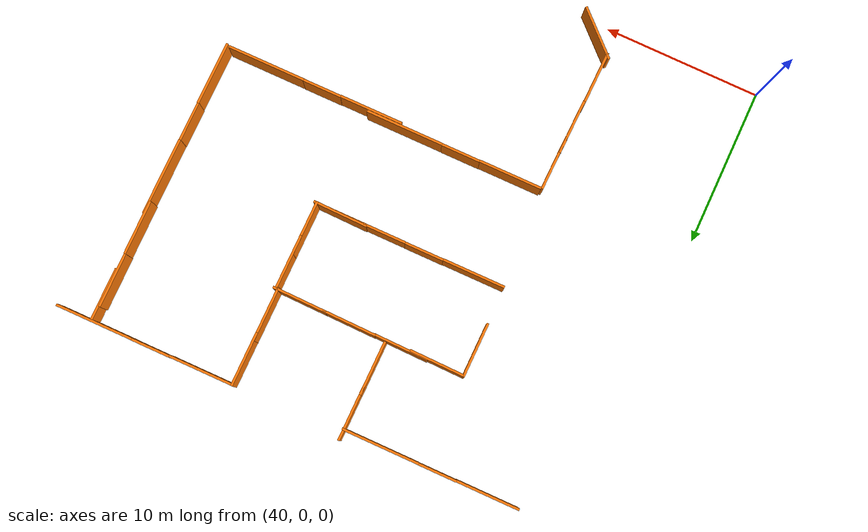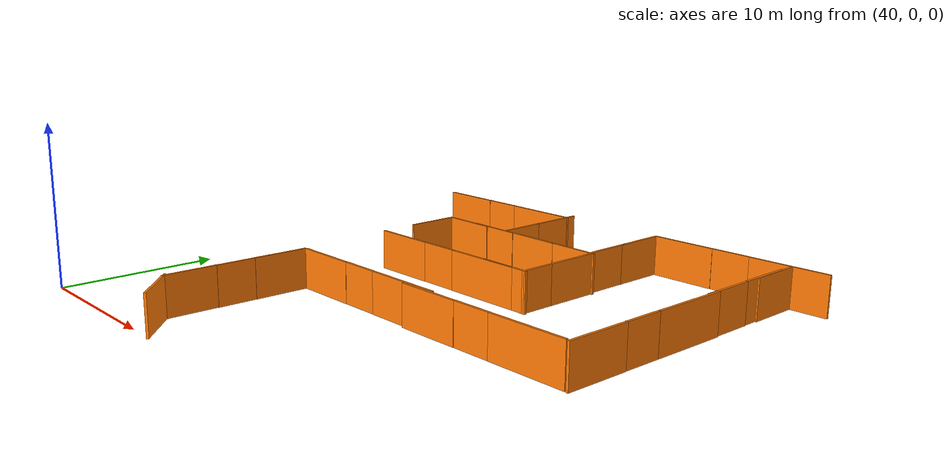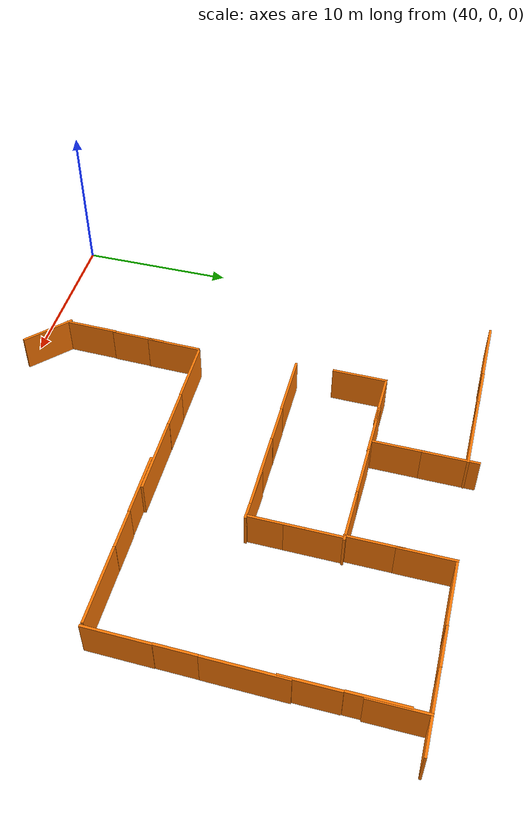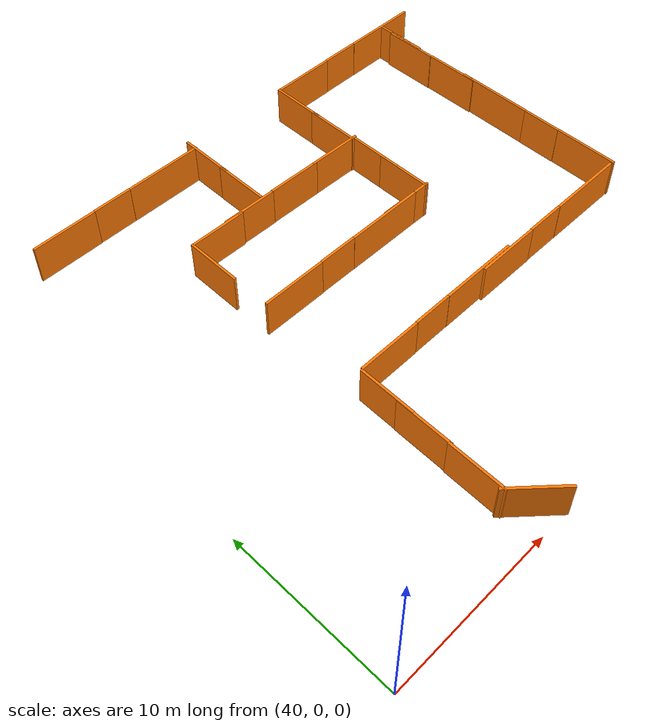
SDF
<sdf version="1.7">
 <world name="cimen_zemin_dunyasi">
  <model name="barrier2_1_clone_clone_clone">
   <pose>48.8907 1.64149 0 0 -0 2.38948</pose>
   <link name="Wall_3">
    <collision name="Wall_3_Collision">
     <geometry><box><size>3.5 0.15 2.5</size></box></geometry>
     <pose>0 0 1.25 0 -0 0</pose>
    </collision>
    <visual name="Wall_3_Visual">
     <pose>0 0 1.25 0 -0 0</pose>
     <geometry><box><size>3.5 0.15 2.5</size></box></geometry>
     <material>
      <script><uri>file://media/materials/scripts/gazebo.material</uri><name>Gazebo/Grey</name></script>
      <ambient>0.996078 0.47451 0.0196078 1</ambient>
     </material>
     <meta><layer>0</layer></meta>
    </visual>
    <pose>-1.55327 -0.720218 0 0 -0 0</pose>
   </link>
   <static>1</static>
  </model>
  <model name="barrier2_1_clone_clone_clone_clone_clone_clone_clone">
   <pose>61.7236 24.0173 0 0 0 -0.015947</pose>
   <link name="Wall_3">
    <collision name="Wall_3_Collision">
     <geometry><box><size>3.5 0.15 2.5</size></box></geometry>
     <pose>0 0 1.25 0 -0 0</pose>
    </collision>
    <visual name="Wall_3_Visual">
     <pose>0 0 1.25 0 -0 0</pose>
     <geometry><box><size>3.5 0.15 2.5</size></box></geometry>
     <material>
      <script><uri>file://media/materials/scripts/gazebo.material</uri><name>Gazebo/Grey</name></script>
      <ambient>0.996078 0.47451 0.0196078 1</ambient>
     </material>
     <meta><layer>0</layer></meta>
    </visual>
    <pose>-1.55327 -0.720218 0 0 -0 0</pose>
   </link>
   <static>1</static>
  </model>
  <model name="barrier2_1_clone_clone_clone_clone_clone_clone_clone_clone">
   <pose>58.4665 24.0631 0 0 0 -0.015947</pose>
   <link name="Wall_3">
    <collision name="Wall_3_Collision">
     <geometry><box><size>3.5 0.15 2.5</size></box></geometry>
     <pose>0 0 1.25 0 -0 0</pose>
    </collision>
    <visual name="Wall_3_Visual">
     <pose>0 0 1.25 0 -0 0</pose>
     <geometry><box><size>3.5 0.15 2.5</size></box></geometry>
     <material>
      <script><uri>file://media/materials/scripts/gazebo.material</uri><name>Gazebo/Grey</name></script>
      <ambient>0.996078 0.47451 0.0196078 1</ambient>
     </material>
     <meta><layer>0</layer></meta>
    </visual>
    <pose>-1.55327 -0.720218 0 0 -0 0</pose>
   </link>
   <static>1</static>
  </model>
  <model name="barrier2_1_clone_clone_clone_clone_clone_clone_clone_clone_clone">
   <pose>55.0363 24.0914 0 0 0 -0.015947</pose>
   <link name="Wall_3">
    <collision name="Wall_3_Collision">
     <geometry><box><size>3.5 0.15 2.5</size></box></geometry>
     <pose>0 0 1.25 0 -0 0</pose>
    </collision>
    <visual name="Wall_3_Visual">
     <pose>0 0 1.25 0 -0 0</pose>
     <geometry><box><size>3.5 0.15 2.5</size></box></geometry>
     <material>
      <script><uri>file://media/materials/scripts/gazebo.material</uri><name>Gazebo/Grey</name></script>
      <ambient>0.996078 0.47451 0.0196078 1</ambient>
     </material>
     <meta><layer>0</layer></meta>
    </visual>
    <pose>-1.55327 -0.720218 0 0 -0 0</pose>
   </link>
   <static>1</static>
  </model>
  <model name="barrier2_1_clone_clone_clone_clone_clone_clone_clone_clone_clone_clone">
   <pose>52.7158 24.068 0 0 0 -0.015947</pose>
   <link name="Wall_3">
    <collision name="Wall_3_Collision">
     <geometry><box><size>3.5 0.15 2.5</size></box></geometry>
     <pose>0 0 1.25 0 -0 0</pose>
    </collision>
    <visual name="Wall_3_Visual">
     <pose>0 0 1.25 0 -0 0</pose>
     <geometry><box><size>3.5 0.15 2.5</size></box></geometry>
     <material>
      <script><uri>file://media/materials/scripts/gazebo.material</uri><name>Gazebo/Grey</name></script>
      <ambient>0.996078 0.47451 0.0196078 1</ambient>
     </material>
     <meta><layer>0</layer></meta>
    </visual>
    <pose>-1.55327 -0.720218 0 0 -0 0</pose>
   </link>
   <static>1</static>
  </model>
  <model name="barrier2_1_clone_clone_clone_clone_clone_clone_clone_clone_clone_clone_clone">
   <pose>48.646 23.2844 0 0 -0 1.56031</pose>
   <link name="Wall_3">
    <collision name="Wall_3_Collision">
     <geometry><box><size>3.5 0.15 2.5</size></box></geometry>
     <pose>0 0 1.25 0 -0 0</pose>
    </collision>
    <visual name="Wall_3_Visual">
     <pose>0 0 1.25 0 -0 0</pose>
     <geometry><box><size>3.5 0.15 2.5</size></box></geometry>
     <material>
      <script><uri>file://media/materials/scripts/gazebo.material</uri><name>Gazebo/Grey</name></script>
      <ambient>0.996078 0.47451 0.0196078 1</ambient>
     </material>
     <meta><layer>0</layer></meta>
    </visual>
    <pose>-1.55327 -0.720218 0 0 -0 0</pose>
   </link>
   <static>1</static>
  </model>
  <model name="barier3_clone_clone_clone_clone_0_clone_clone_clone_clone_1_clone_clone_clone_clone_0_clone_clone_0_clone">
   <link name="Wall_5">
    <pose>-1.25417 -2.31114 0 0 -0 0</pose>
    <inertial>
     <inertia><ixx>0</ixx><ixy>0</ixy><ixz>0</ixz><iyy>0</iyy><iyz>0</iyz><izz>0</izz></inertia>
     <mass>0</mass>
    </inertial>
    <visual name="Wall_5_Visual">
     <pose>0 0 1.25 0 -0 0</pose>
     <geometry><box><size>4.04839 0.15 2.5</size></box></geometry>
     <material>
      <script><uri>file://media/materials/scripts/gazebo.material</uri><name>Gazebo/Grey</name></script>
      <ambient>0.996078 0.47451 0.0196078 1</ambient>
      <shader type="pixel"/>
     </material>
     <meta><layer>0</layer></meta>
    </visual>
    <collision name="Wall_5_Collision">
     <pose>0 0 1.25 0 -0 0</pose>
     <geometry><box><size>4.04839 0.15 2.5</size></box></geometry>
     <surface>
      <friction>
       <ode><mu>1</mu><mu2>1</mu2><fdir1>0 0 0</fdir1><slip1>0</slip1><slip2>0</slip2></ode>
       <torsional>
        <coefficient>1</coefficient>
        <patch_radius>0</patch_radius>
        <surface_radius>0</surface_radius>
        <use_patch_radius>1</use_patch_radius>
        <ode><slip>0</slip></ode>
       </torsional>
      </friction>
      <bounce><restitution_coefficient>0</restitution_coefficient><threshold>1e+06</threshold></bounce>
      <contact>
       <collide_without_contact>0</collide_without_contact>
       <collide_without_contact_bitmask>1</collide_without_contact_bitmask>
       <collide_bitmask>1</collide_bitmask>
       <ode>
        <soft_cfm>0</soft_cfm>
        <soft_erp>0.2</soft_erp>
        <kp>1e+13</kp>
        <kd>1</kd>
        <max_vel>0.01</max_vel>
        <min_depth>0</min_depth>
       </ode>
       <bullet>
        <split_impulse>1</split_impulse>
        <split_impulse_penetration_threshold>-0.01</split_impulse_penetration_threshold>
        <soft_cfm>0</soft_cfm>
        <soft_erp>0.2</soft_erp>
        <kp>1e+13</kp>
        <kd>1</kd>
       </bullet>
      </contact>
     </surface>
    </collision>
   </link>
   <link name="Wall_7">
    <pose>2 -2.29057 0 0 -0 0</pose>
    <visual name="Wall_7_Visual">
     <pose>0 0 1.25 0 -0 0</pose>
     <geometry><box><size>2.5 0.15 2.5</size></box></geometry>
     <material>
      <script><uri>file://media/materials/scripts/gazebo.material</uri><name>Gazebo/Grey</name></script>
      <ambient>0.996078 0.47451 0.0196078 1</ambient>
      <shader type="pixel"/>
     </material>
     <meta><layer>0</layer></meta>
    </visual>
    <collision name="Wall_7_Collision">
     <pose>0 0 1.25 0 -0 0</pose>
     <geometry><box><size>2.5 0.15 2.5</size></box></geometry>
     <surface>
      <friction>
       <ode><mu>1</mu><mu2>1</mu2><fdir1>0 0 0</fdir1><slip1>0</slip1><slip2>0</slip2></ode>
       <torsional>
        <coefficient>1</coefficient>
        <patch_radius>0</patch_radius>
        <surface_radius>0</surface_radius>
        <use_patch_radius>1</use_patch_radius>
        <ode><slip>0</slip></ode>
       </torsional>
      </friction>
      <bounce><restitution_coefficient>0</restitution_coefficient><threshold>1e+06</threshold></bounce>
      <contact>
       <collide_without_contact>0</collide_without_contact>
       <collide_without_contact_bitmask>1</collide_without_contact_bitmask>
       <collide_bitmask>1</collide_bitmask>
       <ode>
        <soft_cfm>0</soft_cfm>
        <soft_erp>0.2</soft_erp>
        <kp>1e+13</kp>
        <kd>1</kd>
        <max_vel>0.01</max_vel>
        <min_depth>0</min_depth>
       </ode>
       <bullet>
        <split_impulse>1</split_impulse>
        <split_impulse_penetration_threshold>-0.01</split_impulse_penetration_threshold>
        <soft_cfm>0</soft_cfm>
        <soft_erp>0.2</soft_erp>
        <kp>1e+13</kp>
        <kd>1</kd>
       </bullet>
      </contact>
     </surface>
    </collision>
   </link>
   <link name="Wall_9">
    <pose>5.71906 -2.30051 0 0 -0 0</pose>
    <inertial>
     <inertia><ixx>0</ixx><ixy>0</ixy><ixz>0</ixz><iyy>0</iyy><iyz>0</iyz><izz>0</izz></inertia>
     <mass>0</mass>
    </inertial>
    <visual name="Wall_9_Visual">
     <pose>0 0 1.25 0 -0 0</pose>
     <geometry><box><size>4.97607 0.15 2.5</size></box></geometry>
     <material>
      <script><uri>file://media/materials/scripts/gazebo.material</uri><name>Gazebo/Grey</name></script>
      <ambient>0.996078 0.47451 0.0196078 1</ambient>
      <shader type="pixel"/>
     </material>
     <meta><layer>0</layer></meta>
    </visual>
    <collision name="Wall_9_Collision">
     <pose>0 0 1.25 0 -0 0</pose>
     <geometry><box><size>4.97607 0.15 2.5</size></box></geometry>
     <surface>
      <friction>
       <ode><mu>1</mu><mu2>1</mu2><fdir1>0 0 0</fdir1><slip1>0</slip1><slip2>0</slip2></ode>
       <torsional>
        <coefficient>1</coefficient>
        <patch_radius>0</patch_radius>
        <surface_radius>0</surface_radius>
        <use_patch_radius>1</use_patch_radius>
        <ode><slip>0</slip></ode>
       </torsional>
      </friction>
      <bounce><restitution_coefficient>0</restitution_coefficient><threshold>1e+06</threshold></bounce>
      <contact>
       <collide_without_contact>0</collide_without_contact>
       <collide_without_contact_bitmask>1</collide_without_contact_bitmask>
       <collide_bitmask>1</collide_bitmask>
       <ode>
        <soft_cfm>0</soft_cfm>
        <soft_erp>0.2</soft_erp>
        <kp>1e+13</kp>
        <kd>1</kd>
        <max_vel>0.01</max_vel>
        <min_depth>0</min_depth>
       </ode>
       <bullet>
        <split_impulse>1</split_impulse>
        <split_impulse_penetration_threshold>-0.01</split_impulse_penetration_threshold>
        <soft_cfm>0</soft_cfm>
        <soft_erp>0.2</soft_erp>
        <kp>1e+13</kp>
        <kd>1</kd>
       </bullet>
      </contact>
     </surface>
    </collision>
   </link>
   <static>1</static>
   <pose>68.4276 14.3355 0 0 -0 1.553</pose>
  </model>
  <model name="barier3_clone_clone_clone_clone_0_clone_clone_clone_clone_1_clone_clone_clone_clone_0_clone_clone_0_clone_clone">
   <link name="Wall_5">
    <pose>-1.25417 -2.31114 0 0 -0 0</pose>
    <inertial>
     <inertia><ixx>0</ixx><ixy>0</ixy><ixz>0</ixz><iyy>0</iyy><iyz>0</iyz><izz>0</izz></inertia>
     <mass>0</mass>
    </inertial>
    <visual name="Wall_5_Visual">
     <pose>0 0 1.25 0 -0 0</pose>
     <geometry><box><size>4.04839 0.15 2.5</size></box></geometry>
     <material>
      <script><uri>file://media/materials/scripts/gazebo.material</uri><name>Gazebo/Grey</name></script>
      <ambient>0.996078 0.47451 0.0196078 1</ambient>
      <shader type="pixel"/>
     </material>
     <meta><layer>0</layer></meta>
    </visual>
    <collision name="Wall_5_Collision">
     <pose>0 0 1.25 0 -0 0</pose>
     <geometry><box><size>4.04839 0.15 2.5</size></box></geometry>
     <surface>
      <friction>
       <ode><mu>1</mu><mu2>1</mu2><fdir1>0 0 0</fdir1><slip1>0</slip1><slip2>0</slip2></ode>
       <torsional>
        <coefficient>1</coefficient>
        <patch_radius>0</patch_radius>
        <surface_radius>0</surface_radius>
        <use_patch_radius>1</use_patch_radius>
        <ode><slip>0</slip></ode>
       </torsional>
      </friction>
      <bounce><restitution_coefficient>0</restitution_coefficient><threshold>1e+06</threshold></bounce>
      <contact>
       <collide_without_contact>0</collide_without_contact>
       <collide_without_contact_bitmask>1</collide_without_contact_bitmask>
       <collide_bitmask>1</collide_bitmask>
       <ode>
        <soft_cfm>0</soft_cfm>
        <soft_erp>0.2</soft_erp>
        <kp>1e+13</kp>
        <kd>1</kd>
        <max_vel>0.01</max_vel>
        <min_depth>0</min_depth>
       </ode>
       <bullet>
        <split_impulse>1</split_impulse>
        <split_impulse_penetration_threshold>-0.01</split_impulse_penetration_threshold>
        <soft_cfm>0</soft_cfm>
        <soft_erp>0.2</soft_erp>
        <kp>1e+13</kp>
        <kd>1</kd>
       </bullet>
      </contact>
     </surface>
    </collision>
   </link>
   <link name="Wall_7">
    <pose>2 -2.29057 0 0 -0 0</pose>
    <visual name="Wall_7_Visual">
     <pose>0 0 1.25 0 -0 0</pose>
     <geometry><box><size>2.5 0.15 2.5</size></box></geometry>
     <material>
      <script><uri>file://media/materials/scripts/gazebo.material</uri><name>Gazebo/Grey</name></script>
      <ambient>0.996078 0.47451 0.0196078 1</ambient>
      <shader type="pixel"/>
     </material>
     <meta><layer>0</layer></meta>
    </visual>
    <collision name="Wall_7_Collision">
     <pose>0 0 1.25 0 -0 0</pose>
     <geometry><box><size>2.5 0.15 2.5</size></box></geometry>
     <surface>
      <friction>
       <ode><mu>1</mu><mu2>1</mu2><fdir1>0 0 0</fdir1><slip1>0</slip1><slip2>0</slip2></ode>
       <torsional>
        <coefficient>1</coefficient>
        <patch_radius>0</patch_radius>
        <surface_radius>0</surface_radius>
        <use_patch_radius>1</use_patch_radius>
        <ode><slip>0</slip></ode>
       </torsional>
      </friction>
      <bounce><restitution_coefficient>0</restitution_coefficient><threshold>1e+06</threshold></bounce>
      <contact>
       <collide_without_contact>0</collide_without_contact>
       <collide_without_contact_bitmask>1</collide_without_contact_bitmask>
       <collide_bitmask>1</collide_bitmask>
       <ode>
        <soft_cfm>0</soft_cfm>
        <soft_erp>0.2</soft_erp>
        <kp>1e+13</kp>
        <kd>1</kd>
        <max_vel>0.01</max_vel>
        <min_depth>0</min_depth>
       </ode>
       <bullet>
        <split_impulse>1</split_impulse>
        <split_impulse_penetration_threshold>-0.01</split_impulse_penetration_threshold>
        <soft_cfm>0</soft_cfm>
        <soft_erp>0.2</soft_erp>
        <kp>1e+13</kp>
        <kd>1</kd>
       </bullet>
      </contact>
     </surface>
    </collision>
   </link>
   <link name="Wall_9">
    <pose>5.71906 -2.30051 0 0 -0 0</pose>
    <inertial>
     <inertia><ixx>0</ixx><ixy>0</ixy><ixz>0</ixz><iyy>0</iyy><iyz>0</iyz><izz>0</izz></inertia>
     <mass>0</mass>
    </inertial>
    <visual name="Wall_9_Visual">
     <pose>0 0 1.25 0 -0 0</pose>
     <geometry><box><size>4.97607 0.15 2.5</size></box></geometry>
     <material>
      <script><uri>file://media/materials/scripts/gazebo.material</uri><name>Gazebo/Grey</name></script>
      <ambient>0.996078 0.47451 0.0196078 1</ambient>
      <shader type="pixel"/>
     </material>
     <meta><layer>0</layer></meta>
    </visual>
    <collision name="Wall_9_Collision">
     <pose>0 0 1.25 0 -0 0</pose>
     <geometry><box><size>4.97607 0.15 2.5</size></box></geometry>
     <surface>
      <friction>
       <ode><mu>1</mu><mu2>1</mu2><fdir1>0 0 0</fdir1><slip1>0</slip1><slip2>0</slip2></ode>
       <torsional>
        <coefficient>1</coefficient>
        <patch_radius>0</patch_radius>
        <surface_radius>0</surface_radius>
        <use_patch_radius>1</use_patch_radius>
        <ode><slip>0</slip></ode>
       </torsional>
      </friction>
      <bounce><restitution_coefficient>0</restitution_coefficient><threshold>1e+06</threshold></bounce>
      <contact>
       <collide_without_contact>0</collide_without_contact>
       <collide_without_contact_bitmask>1</collide_without_contact_bitmask>
       <collide_bitmask>1</collide_bitmask>
       <ode>
        <soft_cfm>0</soft_cfm>
        <soft_erp>0.2</soft_erp>
        <kp>1e+13</kp>
        <kd>1</kd>
        <max_vel>0.01</max_vel>
        <min_depth>0</min_depth>
       </ode>
       <bullet>
        <split_impulse>1</split_impulse>
        <split_impulse_penetration_threshold>-0.01</split_impulse_penetration_threshold>
        <soft_cfm>0</soft_cfm>
        <soft_erp>0.2</soft_erp>
        <kp>1e+13</kp>
        <kd>1</kd>
       </bullet>
      </contact>
     </surface>
    </collision>
   </link>
   <static>1</static>
   <pose>62.303 13.4148 0 0 -0 0.001487</pose>
  </model>
  <model name="barrier2_1_clone_clone_clone_clone_clone_clone_clone_clone_clone_clone_clone_clone_0_clone_clone_0">
   <pose>70.1113 24.9594 0 0 -0 1.56031</pose>
   <link name="Wall_3">
    <collision name="Wall_3_Collision">
     <geometry><box><size>3.5 0.15 2.5</size></box></geometry>
     <pose>0 0 1.25 0 -0 0</pose>
    </collision>
    <visual name="Wall_3_Visual">
     <pose>0 0 1.25 0 -0 0</pose>
     <geometry><box><size>3.5 0.15 2.5</size></box></geometry>
     <material>
      <script><uri>file://media/materials/scripts/gazebo.material</uri><name>Gazebo/Grey</name></script>
      <ambient>0.996078 0.47451 0.0196078 1</ambient>
     </material>
     <meta><layer>0</layer></meta>
    </visual>
    <pose>-1.55327 -0.720218 0 0 -0 0</pose>
   </link>
   <static>1</static>
  </model>
  <model name="barrier2_1_clone_clone_clone_clone_clone_clone_clone_clone_clone_clone_clone_clone_0_clone_clone_0_clone">
   <pose>70.1187 28.4669 0 0 -0 1.56031</pose>
   <link name="Wall_3">
    <collision name="Wall_3_Collision">
     <geometry><box><size>3.5 0.15 2.5</size></box></geometry>
     <pose>0 0 1.25 0 -0 0</pose>
    </collision>
    <visual name="Wall_3_Visual">
     <pose>0 0 1.25 0 -0 0</pose>
     <geometry><box><size>3.5 0.15 2.5</size></box></geometry>
     <material>
      <script><uri>file://media/materials/scripts/gazebo.material</uri><name>Gazebo/Grey</name></script>
      <ambient>0.996078 0.47451 0.0196078 1</ambient>
     </material>
     <meta><layer>0</layer></meta>
    </visual>
    <pose>-1.55327 -0.720218 0 0 -0 0</pose>
   </link>
   <static>1</static>
  </model>
  <model name="barier3_clone_clone_clone_clone_0_clone_clone_clone_clone_1_clone_clone_clone_clone_0_clone_clone_0_clone_clone_clone">
   <link name="Wall_5">
    <pose>-1.25417 -2.31114 0 0 -0 0</pose>
    <inertial>
     <inertia><ixx>0</ixx><ixy>0</ixy><ixz>0</ixz><iyy>0</iyy><iyz>0</iyz><izz>0</izz></inertia>
     <mass>0</mass>
    </inertial>
    <visual name="Wall_5_Visual">
     <pose>0 0 1.25 0 -0 0</pose>
     <geometry><box><size>4.04839 0.15 2.5</size></box></geometry>
     <material>
      <script><uri>file://media/materials/scripts/gazebo.material</uri><name>Gazebo/Grey</name></script>
      <ambient>0.996078 0.47451 0.0196078 1</ambient>
      <shader type="pixel"/>
     </material>
     <meta><layer>0</layer></meta>
    </visual>
    <collision name="Wall_5_Collision">
     <pose>0 0 1.25 0 -0 0</pose>
     <geometry><box><size>4.04839 0.15 2.5</size></box></geometry>
     <surface>
      <friction>
       <ode><mu>1</mu><mu2>1</mu2><fdir1>0 0 0</fdir1><slip1>0</slip1><slip2>0</slip2></ode>
       <torsional>
        <coefficient>1</coefficient>
        <patch_radius>0</patch_radius>
        <surface_radius>0</surface_radius>
        <use_patch_radius>1</use_patch_radius>
        <ode><slip>0</slip></ode>
       </torsional>
      </friction>
      <bounce><restitution_coefficient>0</restitution_coefficient><threshold>1e+06</threshold></bounce>
      <contact>
       <collide_without_contact>0</collide_without_contact>
       <collide_without_contact_bitmask>1</collide_without_contact_bitmask>
       <collide_bitmask>1</collide_bitmask>
       <ode>
        <soft_cfm>0</soft_cfm>
        <soft_erp>0.2</soft_erp>
        <kp>1e+13</kp>
        <kd>1</kd>
        <max_vel>0.01</max_vel>
        <min_depth>0</min_depth>
       </ode>
       <bullet>
        <split_impulse>1</split_impulse>
        <split_impulse_penetration_threshold>-0.01</split_impulse_penetration_threshold>
        <soft_cfm>0</soft_cfm>
        <soft_erp>0.2</soft_erp>
        <kp>1e+13</kp>
        <kd>1</kd>
       </bullet>
      </contact>
     </surface>
    </collision>
   </link>
   <link name="Wall_7">
    <pose>2 -2.29057 0 0 -0 0</pose>
    <visual name="Wall_7_Visual">
     <pose>0 0 1.25 0 -0 0</pose>
     <geometry><box><size>2.5 0.15 2.5</size></box></geometry>
     <material>
      <script><uri>file://media/materials/scripts/gazebo.material</uri><name>Gazebo/Grey</name></script>
      <ambient>0.996078 0.47451 0.0196078 1</ambient>
      <shader type="pixel"/>
     </material>
     <meta><layer>0</layer></meta>
    </visual>
    <collision name="Wall_7_Collision">
     <pose>0 0 1.25 0 -0 0</pose>
     <geometry><box><size>2.5 0.15 2.5</size></box></geometry>
     <surface>
      <friction>
       <ode><mu>1</mu><mu2>1</mu2><fdir1>0 0 0</fdir1><slip1>0</slip1><slip2>0</slip2></ode>
       <torsional>
        <coefficient>1</coefficient>
        <patch_radius>0</patch_radius>
        <surface_radius>0</surface_radius>
        <use_patch_radius>1</use_patch_radius>
        <ode><slip>0</slip></ode>
       </torsional>
      </friction>
      <bounce><restitution_coefficient>0</restitution_coefficient><threshold>1e+06</threshold></bounce>
      <contact>
       <collide_without_contact>0</collide_without_contact>
       <collide_without_contact_bitmask>1</collide_without_contact_bitmask>
       <collide_bitmask>1</collide_bitmask>
       <ode>
        <soft_cfm>0</soft_cfm>
        <soft_erp>0.2</soft_erp>
        <kp>1e+13</kp>
        <kd>1</kd>
        <max_vel>0.01</max_vel>
        <min_depth>0</min_depth>
       </ode>
       <bullet>
        <split_impulse>1</split_impulse>
        <split_impulse_penetration_threshold>-0.01</split_impulse_penetration_threshold>
        <soft_cfm>0</soft_cfm>
        <soft_erp>0.2</soft_erp>
        <kp>1e+13</kp>
        <kd>1</kd>
       </bullet>
      </contact>
     </surface>
    </collision>
   </link>
   <link name="Wall_9">
    <pose>5.71906 -2.30051 0 0 -0 0</pose>
    <inertial>
     <inertia><ixx>0</ixx><ixy>0</ixy><ixz>0</ixz><iyy>0</iyy><iyz>0</iyz><izz>0</izz></inertia>
     <mass>0</mass>
    </inertial>
    <visual name="Wall_9_Visual">
     <pose>0 0 1.25 0 -0 0</pose>
     <geometry><box><size>4.97607 0.15 2.5</size></box></geometry>
     <material>
      <script><uri>file://media/materials/scripts/gazebo.material</uri><name>Gazebo/Grey</name></script>
      <ambient>0.996078 0.47451 0.0196078 1</ambient>
      <shader type="pixel"/>
     </material>
     <meta><layer>0</layer></meta>
    </visual>
    <collision name="Wall_9_Collision">
     <pose>0 0 1.25 0 -0 0</pose>
     <geometry><box><size>4.97607 0.15 2.5</size></box></geometry>
     <surface>
      <friction>
       <ode><mu>1</mu><mu2>1</mu2><fdir1>0 0 0</fdir1><slip1>0</slip1><slip2>0</slip2></ode>
       <torsional>
        <coefficient>1</coefficient>
        <patch_radius>0</patch_radius>
        <surface_radius>0</surface_radius>
        <use_patch_radius>1</use_patch_radius>
        <ode><slip>0</slip></ode>
       </torsional>
      </friction>
      <bounce><restitution_coefficient>0</restitution_coefficient><threshold>1e+06</threshold></bounce>
      <contact>
       <collide_without_contact>0</collide_without_contact>
       <collide_without_contact_bitmask>1</collide_without_contact_bitmask>
       <collide_bitmask>1</collide_bitmask>
       <ode>
        <soft_cfm>0</soft_cfm>
        <soft_erp>0.2</soft_erp>
        <kp>1e+13</kp>
        <kd>1</kd>
        <max_vel>0.01</max_vel>
        <min_depth>0</min_depth>
       </ode>
       <bullet>
        <split_impulse>1</split_impulse>
        <split_impulse_penetration_threshold>-0.01</split_impulse_penetration_threshold>
        <soft_cfm>0</soft_cfm>
        <soft_erp>0.2</soft_erp>
        <kp>1e+13</kp>
        <kd>1</kd>
       </bullet>
      </contact>
     </surface>
    </collision>
   </link>
   <static>1</static>
   <pose>53.0359 13.5511 0 0 -0 0.001487</pose>
  </model>
  <model name="barier3_clone_clone_clone_clone_0_clone_clone_clone_clone_1_clone_clone_clone_clone_0_clone_clone_0_clone_clone_clone_clone">
   <link name="Wall_5">
    <pose>-1.25417 -2.31114 0 0 -0 0</pose>
    <inertial>
     <inertia><ixx>0</ixx><ixy>0</ixy><ixz>0</ixz><iyy>0</iyy><iyz>0</iyz><izz>0</izz></inertia>
     <mass>0</mass>
    </inertial>
    <visual name="Wall_5_Visual">
     <pose>0 0 1.25 0 -0 0</pose>
     <geometry><box><size>4.04839 0.15 2.5</size></box></geometry>
     <material>
      <script><uri>file://media/materials/scripts/gazebo.material</uri><name>Gazebo/Grey</name></script>
      <ambient>0.996078 0.47451 0.0196078 1</ambient>
      <shader type="pixel"/>
     </material>
     <meta><layer>0</layer></meta>
    </visual>
    <collision name="Wall_5_Collision">
     <pose>0 0 1.25 0 -0 0</pose>
     <geometry><box><size>4.04839 0.15 2.5</size></box></geometry>
     <surface>
      <friction>
       <ode><mu>1</mu><mu2>1</mu2><fdir1>0 0 0</fdir1><slip1>0</slip1><slip2>0</slip2></ode>
       <torsional>
        <coefficient>1</coefficient>
        <patch_radius>0</patch_radius>
        <surface_radius>0</surface_radius>
        <use_patch_radius>1</use_patch_radius>
        <ode><slip>0</slip></ode>
       </torsional>
      </friction>
      <bounce><restitution_coefficient>0</restitution_coefficient><threshold>1e+06</threshold></bounce>
      <contact>
       <collide_without_contact>0</collide_without_contact>
       <collide_without_contact_bitmask>1</collide_without_contact_bitmask>
       <collide_bitmask>1</collide_bitmask>
       <ode>
        <soft_cfm>0</soft_cfm>
        <soft_erp>0.2</soft_erp>
        <kp>1e+13</kp>
        <kd>1</kd>
        <max_vel>0.01</max_vel>
        <min_depth>0</min_depth>
       </ode>
       <bullet>
        <split_impulse>1</split_impulse>
        <split_impulse_penetration_threshold>-0.01</split_impulse_penetration_threshold>
        <soft_cfm>0</soft_cfm>
        <soft_erp>0.2</soft_erp>
        <kp>1e+13</kp>
        <kd>1</kd>
       </bullet>
      </contact>
     </surface>
    </collision>
   </link>
   <link name="Wall_7">
    <pose>2 -2.29057 0 0 -0 0</pose>
    <visual name="Wall_7_Visual">
     <pose>0 0 1.25 0 -0 0</pose>
     <geometry><box><size>2.5 0.15 2.5</size></box></geometry>
     <material>
      <script><uri>file://media/materials/scripts/gazebo.material</uri><name>Gazebo/Grey</name></script>
      <ambient>0.996078 0.47451 0.0196078 1</ambient>
      <shader type="pixel"/>
     </material>
     <meta><layer>0</layer></meta>
    </visual>
    <collision name="Wall_7_Collision">
     <pose>0 0 1.25 0 -0 0</pose>
     <geometry><box><size>2.5 0.15 2.5</size></box></geometry>
     <surface>
      <friction>
       <ode><mu>1</mu><mu2>1</mu2><fdir1>0 0 0</fdir1><slip1>0</slip1><slip2>0</slip2></ode>
       <torsional>
        <coefficient>1</coefficient>
        <patch_radius>0</patch_radius>
        <surface_radius>0</surface_radius>
        <use_patch_radius>1</use_patch_radius>
        <ode><slip>0</slip></ode>
       </torsional>
      </friction>
      <bounce><restitution_coefficient>0</restitution_coefficient><threshold>1e+06</threshold></bounce>
      <contact>
       <collide_without_contact>0</collide_without_contact>
       <collide_without_contact_bitmask>1</collide_without_contact_bitmask>
       <collide_bitmask>1</collide_bitmask>
       <ode>
        <soft_cfm>0</soft_cfm>
        <soft_erp>0.2</soft_erp>
        <kp>1e+13</kp>
        <kd>1</kd>
        <max_vel>0.01</max_vel>
        <min_depth>0</min_depth>
       </ode>
       <bullet>
        <split_impulse>1</split_impulse>
        <split_impulse_penetration_threshold>-0.01</split_impulse_penetration_threshold>
        <soft_cfm>0</soft_cfm>
        <soft_erp>0.2</soft_erp>
        <kp>1e+13</kp>
        <kd>1</kd>
       </bullet>
      </contact>
     </surface>
    </collision>
   </link>
   <link name="Wall_9">
    <pose>5.71906 -2.30051 0 0 -0 0</pose>
    <inertial>
     <inertia><ixx>0</ixx><ixy>0</ixy><ixz>0</ixz><iyy>0</iyy><iyz>0</iyz><izz>0</izz></inertia>
     <mass>0</mass>
    </inertial>
    <visual name="Wall_9_Visual">
     <pose>0 0 1.25 0 -0 0</pose>
     <geometry><box><size>4.97607 0.15 2.5</size></box></geometry>
     <material>
      <script><uri>file://media/materials/scripts/gazebo.material</uri><name>Gazebo/Grey</name></script>
      <ambient>0.996078 0.47451 0.0196078 1</ambient>
      <shader type="pixel"/>
     </material>
     <meta><layer>0</layer></meta>
    </visual>
    <collision name="Wall_9_Collision">
     <pose>0 0 1.25 0 -0 0</pose>
     <geometry><box><size>4.97607 0.15 2.5</size></box></geometry>
     <surface>
      <friction>
       <ode><mu>1</mu><mu2>1</mu2><fdir1>0 0 0</fdir1><slip1>0</slip1><slip2>0</slip2></ode>
       <torsional>
        <coefficient>1</coefficient>
        <patch_radius>0</patch_radius>
        <surface_radius>0</surface_radius>
        <use_patch_radius>1</use_patch_radius>
        <ode><slip>0</slip></ode>
       </torsional>
      </friction>
      <bounce><restitution_coefficient>0</restitution_coefficient><threshold>1e+06</threshold></bounce>
      <contact>
       <collide_without_contact>0</collide_without_contact>
       <collide_without_contact_bitmask>1</collide_without_contact_bitmask>
       <collide_bitmask>1</collide_bitmask>
       <ode>
        <soft_cfm>0</soft_cfm>
        <soft_erp>0.2</soft_erp>
        <kp>1e+13</kp>
        <kd>1</kd>
        <max_vel>0.01</max_vel>
        <min_depth>0</min_depth>
       </ode>
       <bullet>
        <split_impulse>1</split_impulse>
        <split_impulse_penetration_threshold>-0.01</split_impulse_penetration_threshold>
        <soft_cfm>0</soft_cfm>
        <soft_erp>0.2</soft_erp>
        <kp>1e+13</kp>
        <kd>1</kd>
       </bullet>
      </contact>
     </surface>
    </collision>
   </link>
   <static>1</static>
   <pose>52.5843 19.9007 0 0 -0 0.001487</pose>
  </model>
  <model name="barrier2_1_clone_clone_clone_clone_clone_clone_clone_clone_0">
   <pose>61.6732 18.3188 0 0 0 -0.015947</pose>
   <link name="Wall_3">
    <collision name="Wall_3_Collision">
     <geometry><box><size>3.5 0.15 2.5</size></box></geometry>
     <pose>0 0 1.25 0 -0 0</pose>
    </collision>
    <visual name="Wall_3_Visual">
     <pose>0 0 1.25 0 -0 0</pose>
     <geometry><box><size>3.5 0.15 2.5</size></box></geometry>
     <material>
      <script><uri>file://media/materials/scripts/gazebo.material</uri><name>Gazebo/Grey</name></script>
      <ambient>0.996078 0.47451 0.0196078 1</ambient>
     </material>
     <meta><layer>0</layer></meta>
    </visual>
    <pose>-1.55327 -0.720218 0 0 -0 0</pose>
   </link>
   <static>1</static>
  </model>
  <model name="barrier2_1_clone_clone_clone_clone_clone_clone_clone_clone_clone_clone_clone_clone_0">
   <pose>61.0061 23.0938 0 0 -0 1.56031</pose>
   <link name="Wall_3">
    <collision name="Wall_3_Collision">
     <geometry><box><size>3.5 0.15 2.5</size></box></geometry>
     <pose>0 0 1.25 0 -0 0</pose>
    </collision>
    <visual name="Wall_3_Visual">
     <pose>0 0 1.25 0 -0 0</pose>
     <geometry><box><size>3.5 0.15 2.5</size></box></geometry>
     <material>
      <script><uri>file://media/materials/scripts/gazebo.material</uri><name>Gazebo/Grey</name></script>
      <ambient>0.996078 0.47451 0.0196078 1</ambient>
     </material>
     <meta><layer>0</layer></meta>
    </visual>
    <pose>-1.55327 -0.720218 0 0 -0 0</pose>
   </link>
   <static>1</static>
  </model>
  <model name="barrier2_1_clone_clone_clone_clone_clone_clone_clone_clone_clone_clone_clone_clone_1">
   <pose>60.9794 20.8332 0 0 -0 1.56031</pose>
   <link name="Wall_3">
    <collision name="Wall_3_Collision">
     <geometry><box><size>3.5 0.15 2.5</size></box></geometry>
     <pose>0 0 1.25 0 -0 0</pose>
    </collision>
    <visual name="Wall_3_Visual">
     <pose>0 0 1.25 0 -0 0</pose>
     <geometry><box><size>3.5 0.15 2.5</size></box></geometry>
     <material>
      <script><uri>file://media/materials/scripts/gazebo.material</uri><name>Gazebo/Grey</name></script>
      <ambient>0.996078 0.47451 0.0196078 1</ambient>
     </material>
     <meta><layer>0</layer></meta>
    </visual>
    <pose>-1.55327 -0.720218 0 0 -0 0</pose>
   </link>
   <static>1</static>
  </model>
  <model name="barier3_clone_clone_clone_clone_0_clone_clone_clone_clone_1_clone_clone_clone_clone_0_clone_clone_0_clone_clone_clone_0">
   <link name="Wall_5">
    <pose>-1.25417 -2.31114 0 0 -0 0</pose>
    <inertial>
     <inertia><ixx>0</ixx><ixy>0</ixy><ixz>0</ixz><iyy>0</iyy><iyz>0</iyz><izz>0</izz></inertia>
     <mass>0</mass>
    </inertial>
    <visual name="Wall_5_Visual">
     <pose>0 0 1.25 0 -0 0</pose>
     <geometry><box><size>4.04839 0.15 2.5</size></box></geometry>
     <material>
      <script><uri>file://media/materials/scripts/gazebo.material</uri><name>Gazebo/Grey</name></script>
      <ambient>0.996078 0.47451 0.0196078 1</ambient>
      <shader type="pixel"/>
     </material>
     <meta><layer>0</layer></meta>
    </visual>
    <collision name="Wall_5_Collision">
     <pose>0 0 1.25 0 -0 0</pose>
     <geometry><box><size>4.04839 0.15 2.5</size></box></geometry>
     <surface>
      <friction>
       <ode><mu>1</mu><mu2>1</mu2><fdir1>0 0 0</fdir1><slip1>0</slip1><slip2>0</slip2></ode>
       <torsional>
        <coefficient>1</coefficient>
        <patch_radius>0</patch_radius>
        <surface_radius>0</surface_radius>
        <use_patch_radius>1</use_patch_radius>
        <ode><slip>0</slip></ode>
       </torsional>
      </friction>
      <bounce><restitution_coefficient>0</restitution_coefficient><threshold>1e+06</threshold></bounce>
      <contact>
       <collide_without_contact>0</collide_without_contact>
       <collide_without_contact_bitmask>1</collide_without_contact_bitmask>
       <collide_bitmask>1</collide_bitmask>
       <ode>
        <soft_cfm>0</soft_cfm>
        <soft_erp>0.2</soft_erp>
        <kp>1e+13</kp>
        <kd>1</kd>
        <max_vel>0.01</max_vel>
        <min_depth>0</min_depth>
       </ode>
       <bullet>
        <split_impulse>1</split_impulse>
        <split_impulse_penetration_threshold>-0.01</split_impulse_penetration_threshold>
        <soft_cfm>0</soft_cfm>
        <soft_erp>0.2</soft_erp>
        <kp>1e+13</kp>
        <kd>1</kd>
       </bullet>
      </contact>
     </surface>
    </collision>
   </link>
   <link name="Wall_7">
    <pose>2 -2.29057 0 0 -0 0</pose>
    <visual name="Wall_7_Visual">
     <pose>0 0 1.25 0 -0 0</pose>
     <geometry><box><size>2.5 0.15 2.5</size></box></geometry>
     <material>
      <script><uri>file://media/materials/scripts/gazebo.material</uri><name>Gazebo/Grey</name></script>
      <ambient>0.996078 0.47451 0.0196078 1</ambient>
      <shader type="pixel"/>
     </material>
     <meta><layer>0</layer></meta>
    </visual>
    <collision name="Wall_7_Collision">
     <pose>0 0 1.25 0 -0 0</pose>
     <geometry><box><size>2.5 0.15 2.5</size></box></geometry>
     <surface>
      <friction>
       <ode><mu>1</mu><mu2>1</mu2><fdir1>0 0 0</fdir1><slip1>0</slip1><slip2>0</slip2></ode>
       <torsional>
        <coefficient>1</coefficient>
        <patch_radius>0</patch_radius>
        <surface_radius>0</surface_radius>
        <use_patch_radius>1</use_patch_radius>
        <ode><slip>0</slip></ode>
       </torsional>
      </friction>
      <bounce><restitution_coefficient>0</restitution_coefficient><threshold>1e+06</threshold></bounce>
      <contact>
       <collide_without_contact>0</collide_without_contact>
       <collide_without_contact_bitmask>1</collide_without_contact_bitmask>
       <collide_bitmask>1</collide_bitmask>
       <ode>
        <soft_cfm>0</soft_cfm>
        <soft_erp>0.2</soft_erp>
        <kp>1e+13</kp>
        <kd>1</kd>
        <max_vel>0.01</max_vel>
        <min_depth>0</min_depth>
       </ode>
       <bullet>
        <split_impulse>1</split_impulse>
        <split_impulse_penetration_threshold>-0.01</split_impulse_penetration_threshold>
        <soft_cfm>0</soft_cfm>
        <soft_erp>0.2</soft_erp>
        <kp>1e+13</kp>
        <kd>1</kd>
       </bullet>
      </contact>
     </surface>
    </collision>
   </link>
   <link name="Wall_9">
    <pose>5.71906 -2.30051 0 0 -0 0</pose>
    <inertial>
     <inertia><ixx>0</ixx><ixy>0</ixy><ixz>0</ixz><iyy>0</iyy><iyz>0</iyz><izz>0</izz></inertia>
     <mass>0</mass>
    </inertial>
    <visual name="Wall_9_Visual">
     <pose>0 0 1.25 0 -0 0</pose>
     <geometry><box><size>4.97607 0.15 2.5</size></box></geometry>
     <material>
      <script><uri>file://media/materials/scripts/gazebo.material</uri><name>Gazebo/Grey</name></script>
      <ambient>0.996078 0.47451 0.0196078 1</ambient>
      <shader type="pixel"/>
     </material>
     <meta><layer>0</layer></meta>
    </visual>
    <collision name="Wall_9_Collision">
     <pose>0 0 1.25 0 -0 0</pose>
     <geometry><box><size>4.97607 0.15 2.5</size></box></geometry>
     <surface>
      <friction>
       <ode><mu>1</mu><mu2>1</mu2><fdir1>0 0 0</fdir1><slip1>0</slip1><slip2>0</slip2></ode>
       <torsional>
        <coefficient>1</coefficient>
        <patch_radius>0</patch_radius>
        <surface_radius>0</surface_radius>
        <use_patch_radius>1</use_patch_radius>
        <ode><slip>0</slip></ode>
       </torsional>
      </friction>
      <bounce><restitution_coefficient>0</restitution_coefficient><threshold>1e+06</threshold></bounce>
      <contact>
       <collide_without_contact>0</collide_without_contact>
       <collide_without_contact_bitmask>1</collide_without_contact_bitmask>
       <collide_bitmask>1</collide_bitmask>
       <ode>
        <soft_cfm>0</soft_cfm>
        <soft_erp>0.2</soft_erp>
        <kp>1e+13</kp>
        <kd>1</kd>
        <max_vel>0.01</max_vel>
        <min_depth>0</min_depth>
       </ode>
       <bullet>
        <split_impulse>1</split_impulse>
        <split_impulse_penetration_threshold>-0.01</split_impulse_penetration_threshold>
        <soft_cfm>0</soft_cfm>
        <soft_erp>0.2</soft_erp>
        <kp>1e+13</kp>
        <kd>1</kd>
       </bullet>
      </contact>
     </surface>
    </collision>
   </link>
   <static>1</static>
   <pose>65.0218 31.8937 0 0 -0 0.001487</pose>
  </model>
  <model name="barrier2_1_clone_clone_clone_clone_clone_clone_clone_clone_clone_clone_clone_clone_0_clone">
   <pose>70.2158 29.4825 0 0 -0 1.56031</pose>
   <link name="Wall_3">
    <collision name="Wall_3_Collision">
     <geometry><box><size>3.5 0.15 2.5</size></box></geometry>
     <pose>0 0 1.25 0 -0 0</pose>
    </collision>
    <visual name="Wall_3_Visual">
     <pose>0 0 1.25 0 -0 0</pose>
     <geometry><box><size>3.5 0.15 2.5</size></box></geometry>
     <material>
      <script><uri>file://media/materials/scripts/gazebo.material</uri><name>Gazebo/Grey</name></script>
      <ambient>0.996078 0.47451 0.0196078 1</ambient>
     </material>
     <meta><layer>0</layer></meta>
    </visual>
    <pose>-1.55327 -0.720218 0 0 -0 0</pose>
   </link>
   <static>1</static>
  </model>
  <model name="barrier2_1_clone_clone_clone_clone_clone_clone_clone_clone_clone_clone_clone_clone_0_clone_clone_0_clone_clone">
   <pose>60.952 29.4714 0 0 -0 1.56031</pose>
   <link name="Wall_3">
    <collision name="Wall_3_Collision">
     <geometry><box><size>3.5 0.15 2.5</size></box></geometry>
     <pose>0 0 1.25 0 -0 0</pose>
    </collision>
    <visual name="Wall_3_Visual">
     <pose>0 0 1.25 0 -0 0</pose>
     <geometry><box><size>3.5 0.15 2.5</size></box></geometry>
     <material>
      <script><uri>file://media/materials/scripts/gazebo.material</uri><name>Gazebo/Grey</name></script>
      <ambient>0.996078 0.47451 0.0196078 1</ambient>
     </material>
     <meta><layer>0</layer></meta>
    </visual>
    <pose>-1.55327 -0.720218 0 0 -0 0</pose>
   </link>
   <static>1</static>
  </model>
  <model name="barrier2_1_clone_clone_clone_clone_clone_clone_clone_clone_clone_clone_clone_clone_0_clone_clone_0_clone_clone_clone">
   <pose>60.9111 26.4857 0 0 -0 1.56031</pose>
   <link name="Wall_3">
    <collision name="Wall_3_Collision">
     <geometry><box><size>3.5 0.15 2.5</size></box></geometry>
     <pose>0 0 1.25 0 -0 0</pose>
    </collision>
    <visual name="Wall_3_Visual">
     <pose>0 0 1.25 0 -0 0</pose>
     <geometry><box><size>3.5 0.15 2.5</size></box></geometry>
     <material>
      <script><uri>file://media/materials/scripts/gazebo.material</uri><name>Gazebo/Grey</name></script>
      <ambient>0.996078 0.47451 0.0196078 1</ambient>
     </material>
     <meta><layer>0</layer></meta>
    </visual>
    <pose>-1.55327 -0.720218 0 0 -0 0</pose>
   </link>
   <static>1</static>
  </model>
  <model name="barrier2_1_clone_clone_clone_clone_clone_clone_clone_clone_clone_clone_clone_clone_0_clone_clone_0_clone_clone_clone_clone">
   <pose>53.7796 26.789 0 0 -0 1.56031</pose>
   <link name="Wall_3">
    <collision name="Wall_3_Collision">
     <geometry><box><size>3.5 0.15 2.5</size></box></geometry>
     <pose>0 0 1.25 0 -0 0</pose>
    </collision>
    <visual name="Wall_3_Visual">
     <pose>0 0 1.25 0 -0 0</pose>
     <geometry><box><size>3.5 0.15 2.5</size></box></geometry>
     <material>
      <script><uri>file://media/materials/scripts/gazebo.material</uri><name>Gazebo/Grey</name></script>
      <ambient>0.996078 0.47451 0.0196078 1</ambient>
     </material>
     <meta><layer>0</layer></meta>
    </visual>
    <pose>-1.55327 -0.720218 0 0 -0 0</pose>
   </link>
   <static>1</static>
  </model>
  <model name="barrier2_1_clone_clone_clone_clone_clone_clone_clone_clone_clone_clone_clone_clone_0_clone_clone_0_clone_clone_clone_clone_clone">
   <pose>53.8209 29.7706 0 0 -0 1.56031</pose>
   <link name="Wall_3">
    <collision name="Wall_3_Collision">
     <geometry><box><size>3.5 0.15 2.5</size></box></geometry>
     <pose>0 0 1.25 0 -0 0</pose>
    </collision>
    <visual name="Wall_3_Visual">
     <pose>0 0 1.25 0 -0 0</pose>
     <geometry><box><size>3.5 0.15 2.5</size></box></geometry>
     <material>
      <script><uri>file://media/materials/scripts/gazebo.material</uri><name>Gazebo/Grey</name></script>
      <ambient>0.996078 0.47451 0.0196078 1</ambient>
     </material>
     <meta><layer>0</layer></meta>
    </visual>
    <pose>-1.55327 -0.720218 0 0 -0 0</pose>
   </link>
   <static>1</static>
  </model>
  <model name="barier3_clone_clone_clone_clone_0_clone_clone_clone_1_clone">
   <link name="Wall_5">
    <pose>-1.25417 -2.31114 0 0 -0 0</pose>
    <inertial>
     <inertia><ixx>0</ixx><ixy>0</ixy><ixz>0</ixz><iyy>0</iyy><iyz>0</iyz><izz>0</izz></inertia>
     <mass>0</mass>
    </inertial>
    <visual name="Wall_5_Visual">
     <pose>0 0 1.25 0 -0 0</pose>
     <geometry><box><size>4.04839 0.15 2.5</size></box></geometry>
     <material>
      <script><uri>file://media/materials/scripts/gazebo.material</uri><name>Gazebo/Grey</name></script>
      <ambient>0.996078 0.47451 0.0196078 1</ambient>
      <shader type="pixel"/>
     </material>
     <meta><layer>0</layer></meta>
    </visual>
    <collision name="Wall_5_Collision">
     <pose>0 0 1.25 0 -0 0</pose>
     <geometry><box><size>4.04839 0.15 2.5</size></box></geometry>
     <surface>
      <friction>
       <ode><mu>1</mu><mu2>1</mu2><fdir1>0 0 0</fdir1><slip1>0</slip1><slip2>0</slip2></ode>
       <torsional>
        <coefficient>1</coefficient>
        <patch_radius>0</patch_radius>
        <surface_radius>0</surface_radius>
        <use_patch_radius>1</use_patch_radius>
        <ode><slip>0</slip></ode>
       </torsional>
      </friction>
      <bounce><restitution_coefficient>0</restitution_coefficient><threshold>1e+06</threshold></bounce>
      <contact>
       <collide_without_contact>0</collide_without_contact>
       <collide_without_contact_bitmask>1</collide_without_contact_bitmask>
       <collide_bitmask>1</collide_bitmask>
       <ode>
        <soft_cfm>0</soft_cfm>
        <soft_erp>0.2</soft_erp>
        <kp>1e+13</kp>
        <kd>1</kd>
        <max_vel>0.01</max_vel>
        <min_depth>0</min_depth>
       </ode>
       <bullet>
        <split_impulse>1</split_impulse>
        <split_impulse_penetration_threshold>-0.01</split_impulse_penetration_threshold>
        <soft_cfm>0</soft_cfm>
        <soft_erp>0.2</soft_erp>
        <kp>1e+13</kp>
        <kd>1</kd>
       </bullet>
      </contact>
     </surface>
    </collision>
   </link>
   <link name="Wall_7">
    <pose>2 -2.29057 0 0 -0 0</pose>
    <visual name="Wall_7_Visual">
     <pose>0 0 1.25 0 -0 0</pose>
     <geometry><box><size>2.5 0.15 2.5</size></box></geometry>
     <material>
      <script><uri>file://media/materials/scripts/gazebo.material</uri><name>Gazebo/Grey</name></script>
      <ambient>0.996078 0.47451 0.0196078 1</ambient>
      <shader type="pixel"/>
     </material>
     <meta><layer>0</layer></meta>
    </visual>
    <collision name="Wall_7_Collision">
     <pose>0 0 1.25 0 -0 0</pose>
     <geometry><box><size>2.5 0.15 2.5</size></box></geometry>
     <surface>
      <friction>
       <ode><mu>1</mu><mu2>1</mu2><fdir1>0 0 0</fdir1><slip1>0</slip1><slip2>0</slip2></ode>
       <torsional>
        <coefficient>1</coefficient>
        <patch_radius>0</patch_radius>
        <surface_radius>0</surface_radius>
        <use_patch_radius>1</use_patch_radius>
        <ode><slip>0</slip></ode>
       </torsional>
      </friction>
      <bounce><restitution_coefficient>0</restitution_coefficient><threshold>1e+06</threshold></bounce>
      <contact>
       <collide_without_contact>0</collide_without_contact>
       <collide_without_contact_bitmask>1</collide_without_contact_bitmask>
       <collide_bitmask>1</collide_bitmask>
       <ode>
        <soft_cfm>0</soft_cfm>
        <soft_erp>0.2</soft_erp>
        <kp>1e+13</kp>
        <kd>1</kd>
        <max_vel>0.01</max_vel>
        <min_depth>0</min_depth>
       </ode>
       <bullet>
        <split_impulse>1</split_impulse>
        <split_impulse_penetration_threshold>-0.01</split_impulse_penetration_threshold>
        <soft_cfm>0</soft_cfm>
        <soft_erp>0.2</soft_erp>
        <kp>1e+13</kp>
        <kd>1</kd>
       </bullet>
      </contact>
     </surface>
    </collision>
   </link>
   <link name="Wall_9">
    <pose>5.71906 -2.30051 0 0 -0 0</pose>
    <inertial>
     <inertia><ixx>0</ixx><ixy>0</ixy><ixz>0</ixz><iyy>0</iyy><iyz>0</iyz><izz>0</izz></inertia>
     <mass>0</mass>
    </inertial>
    <visual name="Wall_9_Visual">
     <pose>0 0 1.25 0 -0 0</pose>
     <geometry><box><size>4.97607 0.15 2.5</size></box></geometry>
     <material>
      <script><uri>file://media/materials/scripts/gazebo.material</uri><name>Gazebo/Grey</name></script>
      <ambient>0.996078 0.47451 0.0196078 1</ambient>
      <shader type="pixel"/>
     </material>
     <meta><layer>0</layer></meta>
    </visual>
    <collision name="Wall_9_Collision">
     <pose>0 0 1.25 0 -0 0</pose>
     <geometry><box><size>4.97607 0.15 2.5</size></box></geometry>
     <surface>
      <friction>
       <ode><mu>1</mu><mu2>1</mu2><fdir1>0 0 0</fdir1><slip1>0</slip1><slip2>0</slip2></ode>
       <torsional>
        <coefficient>1</coefficient>
        <patch_radius>0</patch_radius>
        <surface_radius>0</surface_radius>
        <use_patch_radius>1</use_patch_radius>
        <ode><slip>0</slip></ode>
       </torsional>
      </friction>
      <bounce><restitution_coefficient>0</restitution_coefficient><threshold>1e+06</threshold></bounce>
      <contact>
       <collide_without_contact>0</collide_without_contact>
       <collide_without_contact_bitmask>1</collide_without_contact_bitmask>
       <collide_bitmask>1</collide_bitmask>
       <ode>
        <soft_cfm>0</soft_cfm>
        <soft_erp>0.2</soft_erp>
        <kp>1e+13</kp>
        <kd>1</kd>
        <max_vel>0.01</max_vel>
        <min_depth>0</min_depth>
       </ode>
       <bullet>
        <split_impulse>1</split_impulse>
        <split_impulse_penetration_threshold>-0.01</split_impulse_penetration_threshold>
        <soft_cfm>0</soft_cfm>
        <soft_erp>0.2</soft_erp>
        <kp>1e+13</kp>
        <kd>1</kd>
       </bullet>
      </contact>
     </surface>
    </collision>
   </link>
   <static>1</static>
   <pose>46.4321 31.5357 0 0 -0 0</pose>
  </model>
  <model name="barrier2_1_clone_clone_0">
   <pose>48.9007 8.60627 0 0 -0 1.54878</pose>
   <link name="Wall_3">
    <collision name="Wall_3_Collision">
     <geometry><box><size>3.5 0.15 2.5</size></box></geometry>
     <pose>0 0 1.25 0 -0 0</pose>
    </collision>
    <visual name="Wall_3_Visual">
     <pose>0 0 1.25 0 -0 0</pose>
     <geometry><box><size>3.5 0.15 2.5</size></box></geometry>
     <material>
      <script><uri>file://media/materials/scripts/gazebo.material</uri><name>Gazebo/Grey</name></script>
      <ambient>0.996078 0.47451 0.0196078 1</ambient>
     </material>
     <meta><layer>0</layer></meta>
    </visual>
    <pose>-1.55327 -0.720218 0 0 -0 0</pose>
   </link>
   <static>1</static>
  </model>
  <model name="barrier2_1_clone_clone_0_clone">
   <pose>48.977 11.049 0 0 -0 1.54878</pose>
   <link name="Wall_3">
    <collision name="Wall_3_Collision">
     <geometry><box><size>3.5 0.15 2.5</size></box></geometry>
     <pose>0 0 1.25 0 -0 0</pose>
    </collision>
    <visual name="Wall_3_Visual">
     <pose>0 0 1.25 0 -0 0</pose>
     <geometry><box><size>3.5 0.15 2.5</size></box></geometry>
     <material>
      <script><uri>file://media/materials/scripts/gazebo.material</uri><name>Gazebo/Grey</name></script>
      <ambient>0.996078 0.47451 0.0196078 1</ambient>
     </material>
     <meta><layer>0</layer></meta>
    </visual>
    <pose>-1.55327 -0.720218 0 0 -0 0</pose>
   </link>
   <static>1</static>
  </model>
  <model name="barrier2_1_clone_clone_0_clone_0">
   <pose>48.7883 5.3113 0 0 -0 1.54878</pose>
   <link name="Wall_3">
    <collision name="Wall_3_Collision">
     <geometry><box><size>3.5 0.15 2.5</size></box></geometry>
     <pose>0 0 1.25 0 -0 0</pose>
    </collision>
    <visual name="Wall_3_Visual">
     <pose>0 0 1.25 0 -0 0</pose>
     <geometry><box><size>3.5 0.15 2.5</size></box></geometry>
     <material>
      <script><uri>file://media/materials/scripts/gazebo.material</uri><name>Gazebo/Grey</name></script>
      <ambient>0.996078 0.47451 0.0196078 1</ambient>
     </material>
     <meta><layer>0</layer></meta>
    </visual>
    <pose>-1.55327 -0.720218 0 0 -0 0</pose>
   </link>
   <static>1</static>
  </model>
 </world>
</sdf>
